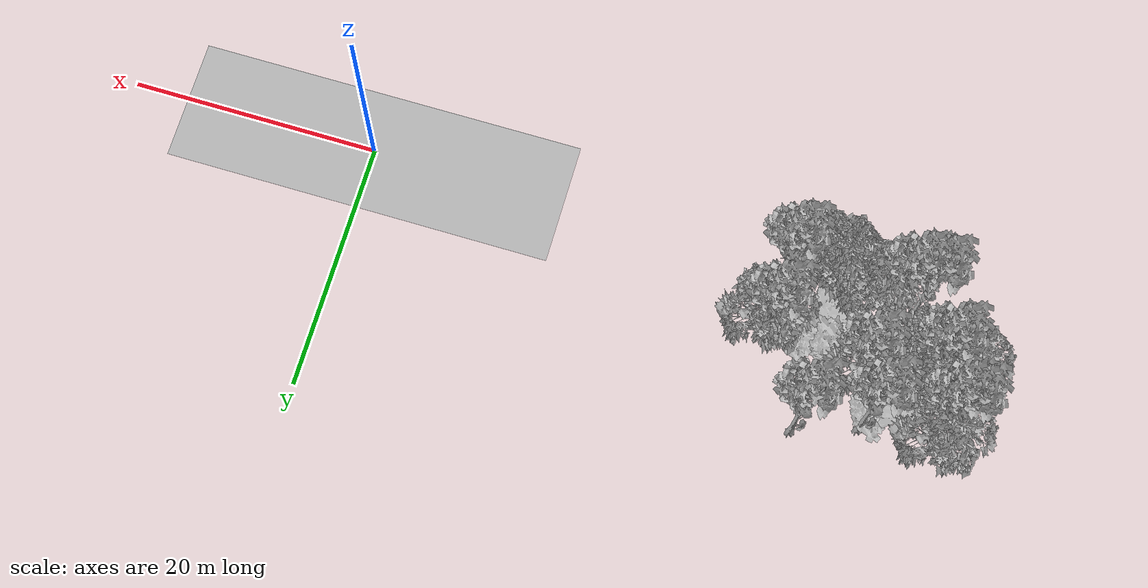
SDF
<sdf version="1.7">
 <world name="default">
  <model name="ground_plane">
   <static>1</static>
   <link name="link">
    <collision name="collision">
     <pose>-50 0 0 0 -0 0</pose>
     <geometry><plane><normal>0 0 1</normal><size>100 100</size></plane></geometry>
     <surface><contact><ode><min_depth>0.01</min_depth><max_vel>0</max_vel></ode></contact></surface>
    </collision>
    <visual name="grass">
     <cast_shadows>0</cast_shadows>
     <geometry>
      <mesh>
       <scale>0.5814285714285714 0.18142857142857144 0.1</scale>
       <uri>file://grass_plane/meshes/grass_plane.dae</uri>
      </mesh>
     </geometry>
    </visual>
   </link>
  </model>
  <model name="Tree 18">
   <static>1</static>
   <pose>-37.35110678123039 12.686138787581811 0 1.57079 -0 0</pose>
   <link name="link">
    <collision name="collision">
     <geometry><mesh><scale>3.5 5 3.5</scale><uri>model://tree_9/meshes/tree_9.obj</uri></mesh></geometry>
    </collision>
    <visual name="visual">
     <geometry><mesh><scale>3.5 5 3.5</scale><uri>model://tree_9/meshes/tree_9.obj</uri></mesh></geometry>
    </visual>
   </link>
  </model>
  <model name="Tree 25">
   <static>1</static>
   <pose>-47.45939324563728 11.88569382267178 0 1.57079 -0 0</pose>
   <link name="link">
    <collision name="collision">
     <geometry><mesh><scale>3.5 5 3.5</scale><uri>model://tree_2/meshes/tree_2.obj</uri></mesh></geometry>
    </collision>
    <visual name="visual">
     <geometry><mesh><scale>3.5 5 3.5</scale><uri>model://tree_2/meshes/tree_2.obj</uri></mesh></geometry>
    </visual>
   </link>
  </model>
  <model name="Tree 45">
   <static>1</static>
   <pose>-33.77793056770271 1.6534660549758975 0 1.57079 -0 0</pose>
   <link name="link">
    <collision name="collision">
     <geometry><mesh><scale>3.5 5 3.5</scale><uri>model://tree_9/meshes/tree_9.obj</uri></mesh></geometry>
    </collision>
    <visual name="visual">
     <geometry><mesh><scale>3.5 5 3.5</scale><uri>model://tree_9/meshes/tree_9.obj</uri></mesh></geometry>
    </visual>
   </link>
  </model>
  <model name="Tree 54">
   <static>1</static>
   <pose>-44.06904683229549 1.2360633848074976 0 1.57079 -0 0</pose>
   <link name="link">
    <collision name="collision">
     <geometry><mesh><scale>3.5 5 3.5</scale><uri>model://tree_9/meshes/tree_9.obj</uri></mesh></geometry>
    </collision>
    <visual name="visual">
     <geometry><mesh><scale>3.5 5 3.5</scale><uri>model://tree_9/meshes/tree_9.obj</uri></mesh></geometry>
    </visual>
   </link>
  </model>
  <model name="Tree 55">
   <static>1</static>
   <pose>-36.250136320331734 5.2687193895733735 0 1.57079 -0 0</pose>
   <link name="link">
    <collision name="collision">
     <geometry><mesh><scale>4 2.5 4</scale><uri>model://tree_1/meshes/tree_1.obj</uri></mesh></geometry>
    </collision>
    <visual name="visual">
     <geometry><mesh><scale>4 2.5 4</scale><uri>model://tree_1/meshes/tree_1.obj</uri></mesh></geometry>
    </visual>
   </link>
  </model>
  <model name="Tree 58">
   <static>1</static>
   <pose>-40.75464811734896 7.98226727407695 0 1.57079 -0 0</pose>
   <link name="link">
    <collision name="collision">
     <geometry><mesh><scale>3.5 5 3.5</scale><uri>model://tree_9/meshes/tree_9.obj</uri></mesh></geometry>
    </collision>
    <visual name="visual">
     <geometry><mesh><scale>3.5 5 3.5</scale><uri>model://tree_9/meshes/tree_9.obj</uri></mesh></geometry>
    </visual>
   </link>
  </model>
  <model name="Tree 65">
   <static>1</static>
   <pose>-38.54550543773703 5.152006530230473 0 1.57079 -0 0</pose>
   <link name="link">
    <collision name="collision">
     <geometry><mesh><scale>4 2.5 4</scale><uri>model://tree_1/meshes/tree_1.obj</uri></mesh></geometry>
    </collision>
    <visual name="visual">
     <geometry><mesh><scale>4 2.5 4</scale><uri>model://tree_1/meshes/tree_1.obj</uri></mesh></geometry>
    </visual>
   </link>
  </model>
  <model name="Tree 69">
   <static>1</static>
   <pose>-43.00895167752636 9.545241752986204 0 1.57079 -0 0</pose>
   <link name="link">
    <collision name="collision">
     <geometry><mesh><scale>4 2.5 4</scale><uri>model://tree_1/meshes/tree_1.obj</uri></mesh></geometry>
    </collision>
    <visual name="visual">
     <geometry><mesh><scale>4 2.5 4</scale><uri>model://tree_1/meshes/tree_1.obj</uri></mesh></geometry>
    </visual>
   </link>
  </model>
  <model name="Tree 93">
   <static>1</static>
   <pose>-33.07056679743084 6.50464997244098 0 1.57079 -0 0</pose>
   <link name="link">
    <collision name="collision">
     <geometry><mesh><scale>3.5 5 3.5</scale><uri>model://tree_2/meshes/tree_2.obj</uri></mesh></geometry>
    </collision>
    <visual name="visual">
     <geometry><mesh><scale>3.5 5 3.5</scale><uri>model://tree_2/meshes/tree_2.obj</uri></mesh></geometry>
    </visual>
   </link>
  </model>
  <model name="Tree 97">
   <static>1</static>
   <pose>-46.17670081223791 5.77300483621703 0 1.57079 -0 0</pose>
   <link name="link">
    <collision name="collision">
     <geometry><mesh><scale>3.5 5 3.5</scale><uri>model://tree_9/meshes/tree_9.obj</uri></mesh></geometry>
    </collision>
    <visual name="visual">
     <geometry><mesh><scale>3.5 5 3.5</scale><uri>model://tree_9/meshes/tree_9.obj</uri></mesh></geometry>
    </visual>
   </link>
  </model>
  <model name="Tree 111">
   <static>1</static>
   <pose>-36.877745196741024 1.241034452765124 0 1.57079 -0 0</pose>
   <link name="link">
    <collision name="collision">
     <geometry><mesh><scale>3.5 5 3.5</scale><uri>model://tree_2/meshes/tree_2.obj</uri></mesh></geometry>
    </collision>
    <visual name="visual">
     <geometry><mesh><scale>3.5 5 3.5</scale><uri>model://tree_2/meshes/tree_2.obj</uri></mesh></geometry>
    </visual>
   </link>
  </model>
  <model name="Tree 129">
   <static>1</static>
   <pose>-42.58179691753577 1.3699039682354481 0 1.57079 -0 0</pose>
   <link name="link">
    <collision name="collision">
     <geometry><mesh><scale>3.5 5 3.5</scale><uri>model://tree_9/meshes/tree_9.obj</uri></mesh></geometry>
    </collision>
    <visual name="visual">
     <geometry><mesh><scale>3.5 5 3.5</scale><uri>model://tree_9/meshes/tree_9.obj</uri></mesh></geometry>
    </visual>
   </link>
  </model>
  <model name="Tree 130">
   <static>1</static>
   <pose>-47.481058656301194 9.651962323239612 0 1.57079 -0 0</pose>
   <link name="link">
    <collision name="collision">
     <geometry><mesh><scale>3.5 5 3.5</scale><uri>model://tree_9/meshes/tree_9.obj</uri></mesh></geometry>
    </collision>
    <visual name="visual">
     <geometry><mesh><scale>3.5 5 3.5</scale><uri>model://tree_9/meshes/tree_9.obj</uri></mesh></geometry>
    </visual>
   </link>
  </model>
  <model name="Tree 134">
   <static>1</static>
   <pose>-48.35597941134793 9.684410185585289 0 1.57079 -0 0</pose>
   <link name="link">
    <collision name="collision">
     <geometry><mesh><scale>3.5 5 3.5</scale><uri>model://tree_9/meshes/tree_9.obj</uri></mesh></geometry>
    </collision>
    <visual name="visual">
     <geometry><mesh><scale>3.5 5 3.5</scale><uri>model://tree_9/meshes/tree_9.obj</uri></mesh></geometry>
    </visual>
   </link>
  </model>
  <model name="Tree 159">
   <static>1</static>
   <pose>-40.56918414120684 2.0199721100921018 0 1.57079 -0 0</pose>
   <link name="link">
    <collision name="collision">
     <geometry><mesh><scale>3.5 5 3.5</scale><uri>model://tree_2/meshes/tree_2.obj</uri></mesh></geometry>
    </collision>
    <visual name="visual">
     <geometry><mesh><scale>3.5 5 3.5</scale><uri>model://tree_2/meshes/tree_2.obj</uri></mesh></geometry>
    </visual>
   </link>
  </model>
  <model name="Tree 184">
   <static>1</static>
   <pose>-42.26268322247751 11.062049197589012 0 1.57079 -0 0</pose>
   <link name="link">
    <collision name="collision">
     <geometry><mesh><scale>3.5 5 3.5</scale><uri>model://tree_9/meshes/tree_9.obj</uri></mesh></geometry>
    </collision>
    <visual name="visual">
     <geometry><mesh><scale>3.5 5 3.5</scale><uri>model://tree_9/meshes/tree_9.obj</uri></mesh></geometry>
    </visual>
   </link>
  </model>
  <model name="Tree 206">
   <static>1</static>
   <pose>-41.68403303476135 8.131763894570412 0 1.57079 -0 0</pose>
   <link name="link">
    <collision name="collision">
     <geometry><mesh><scale>3.5 5 3.5</scale><uri>model://tree_2/meshes/tree_2.obj</uri></mesh></geometry>
    </collision>
    <visual name="visual">
     <geometry><mesh><scale>3.5 5 3.5</scale><uri>model://tree_2/meshes/tree_2.obj</uri></mesh></geometry>
    </visual>
   </link>
  </model>
  <model name="Tree 217">
   <static>1</static>
   <pose>-38.543315606223544 2.4686052158017695 0 1.57079 -0 0</pose>
   <link name="link">
    <collision name="collision">
     <geometry><mesh><scale>3 2 3</scale><uri>model://tree_3/meshes/tree_3.obj</uri></mesh></geometry>
    </collision>
    <visual name="visual">
     <geometry><mesh><scale>3 2 3</scale><uri>model://tree_3/meshes/tree_3.obj</uri></mesh></geometry>
    </visual>
   </link>
  </model>
  <model name="Tree 221">
   <static>1</static>
   <pose>-36.44709515055808 0.8049447358833959 0 1.57079 -0 0</pose>
   <link name="link">
    <collision name="collision">
     <geometry><mesh><scale>3.5 5 3.5</scale><uri>model://tree_2/meshes/tree_2.obj</uri></mesh></geometry>
    </collision>
    <visual name="visual">
     <geometry><mesh><scale>3.5 5 3.5</scale><uri>model://tree_2/meshes/tree_2.obj</uri></mesh></geometry>
    </visual>
   </link>
  </model>
  <model name="Tree 231">
   <static>1</static>
   <pose>-45.61249101177904 6.1339014356431925 0 1.57079 -0 0</pose>
   <link name="link">
    <collision name="collision">
     <geometry><mesh><scale>3.5 5 3.5</scale><uri>model://tree_2/meshes/tree_2.obj</uri></mesh></geometry>
    </collision>
    <visual name="visual">
     <geometry><mesh><scale>3.5 5 3.5</scale><uri>model://tree_2/meshes/tree_2.obj</uri></mesh></geometry>
    </visual>
   </link>
  </model>
  <model name="Tree 259">
   <static>1</static>
   <pose>-45.90943205895534 7.733007464407496 0 1.57079 -0 0</pose>
   <link name="link">
    <collision name="collision">
     <geometry><mesh><scale>3.5 5 3.5</scale><uri>model://tree_2/meshes/tree_2.obj</uri></mesh></geometry>
    </collision>
    <visual name="visual">
     <geometry><mesh><scale>3.5 5 3.5</scale><uri>model://tree_2/meshes/tree_2.obj</uri></mesh></geometry>
    </visual>
   </link>
  </model>
  <model name="Tree 267">
   <static>1</static>
   <pose>-33.67282254724964 6.29489157850746 0 1.57079 -0 0</pose>
   <link name="link">
    <collision name="collision">
     <geometry><mesh><scale>3.5 5 3.5</scale><uri>model://tree_9/meshes/tree_9.obj</uri></mesh></geometry>
    </collision>
    <visual name="visual">
     <geometry><mesh><scale>3.5 5 3.5</scale><uri>model://tree_9/meshes/tree_9.obj</uri></mesh></geometry>
    </visual>
   </link>
  </model>
  <model name="Tree 280">
   <static>1</static>
   <pose>-47.568446694019386 6.331716969407392 0 1.57079 -0 0</pose>
   <link name="link">
    <collision name="collision">
     <geometry><mesh><scale>3.5 5 3.5</scale><uri>model://tree_2/meshes/tree_2.obj</uri></mesh></geometry>
    </collision>
    <visual name="visual">
     <geometry><mesh><scale>3.5 5 3.5</scale><uri>model://tree_2/meshes/tree_2.obj</uri></mesh></geometry>
    </visual>
   </link>
  </model>
  <model name="Tree 288">
   <static>1</static>
   <pose>-44.22969942162169 8.83080665131753 0 1.57079 -0 0</pose>
   <link name="link">
    <collision name="collision">
     <geometry><mesh><scale>3 2 3</scale><uri>model://tree_3/meshes/tree_3.obj</uri></mesh></geometry>
    </collision>
    <visual name="visual">
     <geometry><mesh><scale>3 2 3</scale><uri>model://tree_3/meshes/tree_3.obj</uri></mesh></geometry>
    </visual>
   </link>
  </model>
  <model name="Bush 0">
   <static>1</static>
   <pose>-48.68938332607335 6.784529854349454 0 1.57079 -0 0</pose>
   <link name="link">
    <collision name="collision">
     <geometry><mesh><scale>2 2 2</scale><uri>model://bush_2/meshes/bush_2.obj</uri></mesh></geometry>
     <surface><contact><collide_without_contact>false</collide_without_contact></contact></surface>
    </collision>
    <visual name="visual">
     <geometry><mesh><scale>2 2 2</scale><uri>model://bush_2/meshes/bush_2.obj</uri></mesh></geometry>
    </visual>
   </link>
  </model>
 </world>
</sdf>
